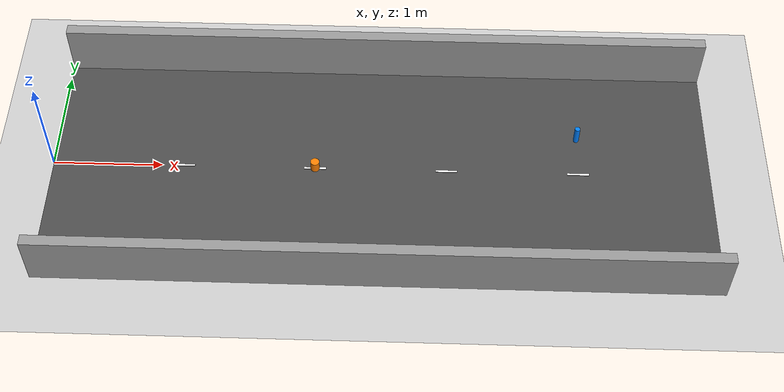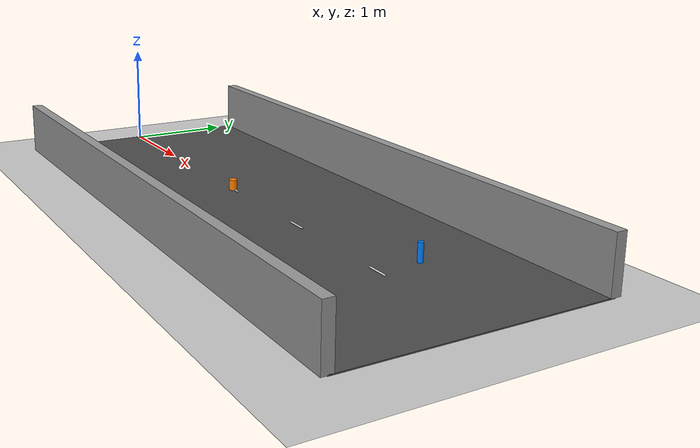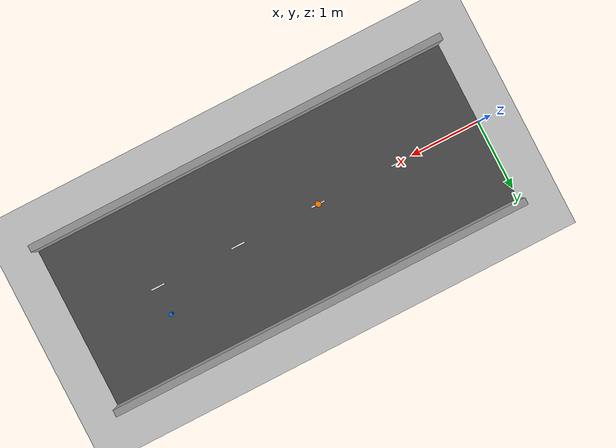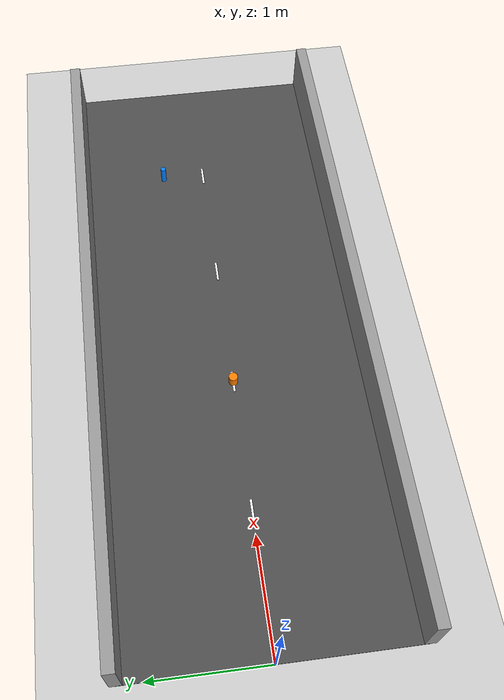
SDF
<?xml version="1.0" ?>
<sdf version="1.6">
  <world name="default">
    <physics type="ode">
      <max_step_size>0.001</max_step_size>
      <real_time_update_rate>10000</real_time_update_rate>
    </physics>
    <plugin name="gazebo_ros_state" filename="libgazebo_ros_state.so">
      <ros><namespace>/gazebo</namespace></ros>
    </plugin>

    <include><uri>model://sun</uri></include>
    <include><uri>model://ground_plane</uri></include>

    <model name="custom_highway">
      <static>true</static>
      <link name="link">
        <collision name="road_collision">
          <pose>3.0 0 0 0 0 0</pose>
          <geometry><box><size>6.0 2.4 0.01</size></box></geometry>
        </collision>
        <visual name="road_visual">
          <pose>3.0 0 0 0 0 0</pose>
          <geometry><box><size>6.0 2.4 0.01</size></box></geometry>
          <material>
            <ambient>0.3 0.3 0.3 1</ambient> <diffuse>0.3 0.3 0.3 1</diffuse>
          </material>
        </visual>

        <visual name="left_line">
          <pose>3.0 1.18 0.006 0 0 0</pose>
          <geometry><box><size>6.0 0.02 0.01</size></box></geometry>
          <material><ambient>1 1 1 1</ambient></material>
        </visual>
        <visual name="right_line">
          <pose>3.0 -1.18 0.006 0 0 0</pose>
          <geometry><box><size>6.0 0.02 0.01</size></box></geometry>
          <material><ambient>1 1 1 1</ambient></material>
        </visual>

        <visual name="dash_1"><pose>1.2 0 0.006 0 0 0</pose><geometry><box><size>0.2 0.02 0.01</size></box></geometry><material><ambient>1 1 1 1</ambient></material></visual>
        <visual name="dash_2"><pose>2.4 0 0.006 0 0 0</pose><geometry><box><size>0.2 0.02 0.01</size></box></geometry><material><ambient>1 1 1 1</ambient></material></visual>
        <visual name="dash_3"><pose>3.6 0 0.006 0 0 0</pose><geometry><box><size>0.2 0.02 0.01</size></box></geometry><material><ambient>1 1 1 1</ambient></material></visual>
        <visual name="dash_4"><pose>4.8 0 0.006 0 0 0</pose><geometry><box><size>0.2 0.02 0.01</size></box></geometry><material><ambient>1 1 1 1</ambient></material></visual>
      </link>
    </model>

    <model name="left_wall">
      <static>true</static>
      <pose>3.0 1.2 0.25 0 0 0</pose>
      <link name="link">
        <collision name="collision"><geometry><box><size>6.0 0.1 0.5</size></box></geometry></collision>
        <visual name="visual"><geometry><box><size>6.0 0.1 0.5</size></box></geometry><material><ambient>0.6 0.6 0.6 1</ambient></material></visual>
      </link>
    </model>

    <model name="right_wall">
      <static>true</static>
      <pose>3.0 -1.2 0.25 0 0 0</pose>
      <link name="link">
        <collision name="collision"><geometry><box><size>6.0 0.1 0.5</size></box></geometry></collision>
        <visual name="visual"><geometry><box><size>6.0 0.1 0.5</size></box></geometry><material><ambient>0.6 0.6 0.6 1</ambient></material></visual>
      </link>
    </model>

    <model name="static_barrel">
      <static>true</static>
      <pose>2.4 0 0.035 0 0 0</pose>
      <link name="link">
        <collision name="collision"><geometry><cylinder><radius>0.04</radius><length>0.14</length></cylinder></geometry></collision>
        <visual name="visual"><geometry><cylinder><radius>0.04</radius><length>0.14</length></cylinder></geometry><material><ambient>1 0.5 0 1</ambient></material></visual>
      </link>
    </model>

    <model name="dynamic_pedestrian">
      <pose>4.8 0.4 0.0875 0 0 0</pose>
      <link name="link">
        <collision name="collision"><geometry><cylinder><radius>0.025</radius><length>0.175</length></cylinder></geometry></collision>
        <visual name="visual"><geometry><cylinder><radius>0.025</radius><length>0.175</length></cylinder></geometry><material><ambient>0 0.5 1 1</ambient></material></visual>
      </link>
    </model>
  </world>
</sdf>
